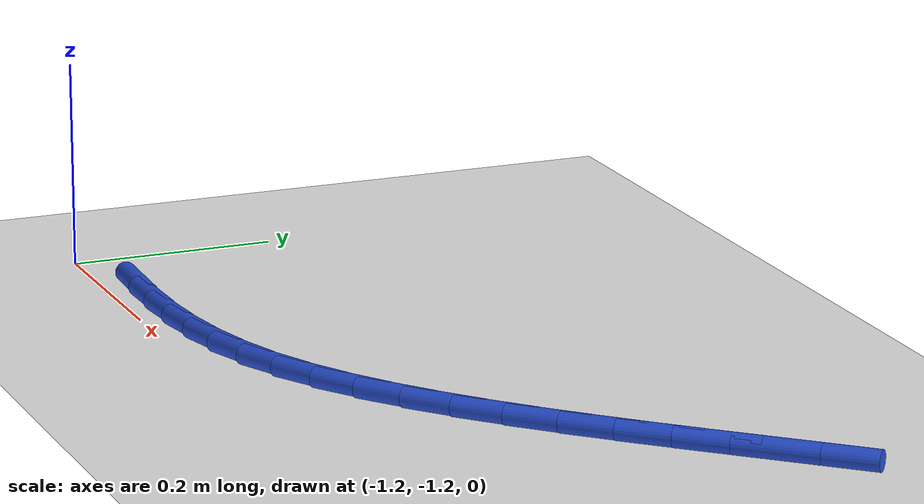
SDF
<sdf version="1.6">
 <world name="default">
  <model name="ground_plane">
   <static>1</static>
   <link name="link">
    <collision name="collision">
     <geometry><plane><normal>0 0 1</normal><size>100 100</size></plane></geometry>
     <surface><friction><ode><mu>100</mu><mu2>50</mu2></ode></friction></surface>
    </collision>
    <visual name="visual">
     <cast_shadows>0</cast_shadows>
     <geometry><plane><normal>0 0 1</normal><size>100 100</size></plane></geometry>
     <material>
      <script><uri>file://media/materials/scripts/gazebo.material</uri><name>Gazebo/WhiteGlow</name></script>
     </material>
    </visual>
   </link>
  </model>
  <model name="line">
   <link name="link_105">
    <pose>-1.084668571052977 -1.1748749175706372 0.01 0 1.57 -0.0349521256517624</pose>
    <collision name="collision">
     <geometry><cylinder><radius>0.01</radius><length>0.08</length></cylinder></geometry>
    </collision>
    <visual name="visual">
     <material>
      <script><name>Gazebo/Blue</name><uri>file://media/materials/scripts/gazebo.material</uri></script>
     </material>
     <geometry><cylinder><radius>0.01</radius><length>0.08</length></cylinder></geometry>
    </visual>
   </link>
   <link name="link_106">
    <pose>-1.0346823260880051 -1.1766227548926085 0.01 0 1.57 0.01556012557608776</pose>
    <collision name="collision">
     <geometry><cylinder><radius>0.01</radius><length>0.08</length></cylinder></geometry>
    </collision>
    <visual name="visual">
     <material>
      <script><name>Gazebo/Blue</name><uri>file://media/materials/scripts/gazebo.material</uri></script>
     </material>
     <geometry><cylinder><radius>0.01</radius><length>0.08</length></cylinder></geometry>
    </visual>
   </link>
   <link name="link_107">
    <pose>-0.9855956939722488 -1.1758588990841634 0.01 0 1.57 0.0765281566003674</pose>
    <collision name="collision">
     <geometry><cylinder><radius>0.01</radius><length>0.08</length></cylinder></geometry>
    </collision>
    <visual name="visual">
     <material>
      <script><name>Gazebo/Blue</name><uri>file://media/materials/scripts/gazebo.material</uri></script>
     </material>
     <geometry><cylinder><radius>0.01</radius><length>0.08</length></cylinder></geometry>
    </visual>
   </link>
   <link name="link_108">
    <pose>-0.9375293660717475 -1.1721732737775654 0.01 0 1.57 0.14844539604661797</pose>
    <collision name="collision">
     <geometry><cylinder><radius>0.01</radius><length>0.08</length></cylinder></geometry>
    </collision>
    <visual name="visual">
     <material>
      <script><name>Gazebo/Blue</name><uri>file://media/materials/scripts/gazebo.material</uri></script>
     </material>
     <geometry><cylinder><radius>0.01</radius><length>0.08</length></cylinder></geometry>
    </visual>
   </link>
   <link name="link_109">
    <pose>-0.8906040337525398 -1.165155802605077 0.01 0 1.57 0.23140203094865425</pose>
    <collision name="collision">
     <geometry><cylinder><radius>0.01</radius><length>0.08</length></cylinder></geometry>
    </collision>
    <visual name="visual">
     <material>
      <script><name>Gazebo/Blue</name><uri>file://media/materials/scripts/gazebo.material</uri></script>
     </material>
     <geometry><cylinder><radius>0.01</radius><length>0.08</length></cylinder></geometry>
    </visual>
   </link>
   <link name="link_110">
    <pose>-0.8449403883806667 -1.1543964091989618 0.01 0 1.57 0.3247685559159043</pose>
    <collision name="collision">
     <geometry><cylinder><radius>0.01</radius><length>0.08</length></cylinder></geometry>
    </collision>
    <visual name="visual">
     <material>
      <script><name>Gazebo/Blue</name><uri>file://media/materials/scripts/gazebo.material</uri></script>
     </material>
     <geometry><cylinder><radius>0.01</radius><length>0.08</length></cylinder></geometry>
    </visual>
   </link>
   <link name="link_111">
    <pose>-0.8006585059166436 -1.1394871397384805 0.01 0 1.57 0.42119614853704074</pose>
    <collision name="collision">
     <geometry><cylinder><radius>0.01</radius><length>0.08</length></cylinder></geometry>
    </collision>
    <visual name="visual">
     <material>
      <script><name>Gazebo/Blue</name><uri>file://media/materials/scripts/gazebo.material</uri></script>
     </material>
     <geometry><cylinder><radius>0.01</radius><length>0.08</length></cylinder></geometry>
    </visual>
   </link>
   <link name="link_112">
    <pose>-0.7578011477240929 -1.120286700124651 0.01 0 1.57 0.5076661056440994</pose>
    <collision name="collision">
     <geometry><cylinder><radius>0.01</radius><length>0.08</length></cylinder></geometry>
    </collision>
    <visual name="visual">
     <material>
      <script><name>Gazebo/Blue</name><uri>file://media/materials/scripts/gazebo.material</uri></script>
     </material>
     <geometry><cylinder><radius>0.01</radius><length>0.08</length></cylinder></geometry>
    </visual>
   </link>
   <link name="link_113">
    <pose>-0.7162593606045513 -1.097177063074045 0.01 0 1.57 0.5823905716351195</pose>
    <collision name="collision">
     <geometry><cylinder><radius>0.01</radius><length>0.08</length></cylinder></geometry>
    </collision>
    <visual name="visual">
     <material>
      <script><name>Gazebo/Blue</name><uri>file://media/materials/scripts/gazebo.material</uri></script>
     </material>
     <geometry><cylinder><radius>0.01</radius><length>0.08</length></cylinder></geometry>
    </visual>
   </link>
   <link name="link_114">
    <pose>-0.6759065408837591 -1.070601078177128 0.01 0 1.57 0.6456419578430522</pose>
    <collision name="collision">
     <geometry><cylinder><radius>0.01</radius><length>0.08</length></cylinder></geometry>
    </collision>
    <visual name="visual">
     <material>
      <script><name>Gazebo/Blue</name><uri>file://media/materials/scripts/gazebo.material</uri></script>
     </material>
     <geometry><cylinder><radius>0.01</radius><length>0.08</length></cylinder></geometry>
    </visual>
   </link>
   <link name="link_115">
    <pose>-0.6366160848874544 -1.0410015950243647 0.01 0 1.57 0.6980815240380353</pose>
    <collision name="collision">
     <geometry><cylinder><radius>0.01</radius><length>0.08</length></cylinder></geometry>
    </collision>
    <visual name="visual">
     <material>
      <script><name>Gazebo/Blue</name><uri>file://media/materials/scripts/gazebo.material</uri></script>
     </material>
     <geometry><cylinder><radius>0.01</radius><length>0.08</length></cylinder></geometry>
    </visual>
   </link>
   <link name="link_116">
    <pose>-0.598261388941376 -1.00882146320622 0.01 0 1.57 0.7405152617929753</pose>
    <collision name="collision">
     <geometry><cylinder><radius>0.01</radius><length>0.08</length></cylinder></geometry>
    </collision>
    <visual name="visual">
     <material>
      <script><name>Gazebo/Blue</name><uri>file://media/materials/scripts/gazebo.material</uri></script>
     </material>
     <geometry><cylinder><radius>0.01</radius><length>0.08</length></cylinder></geometry>
    </visual>
   </link>
   <link name="link_117">
    <pose>-0.5607158493712627 -0.974503532313159 0.01 0 1.57 0.7737335621147309</pose>
    <collision name="collision">
     <geometry><cylinder><radius>0.01</radius><length>0.08</length></cylinder></geometry>
    </collision>
    <visual name="visual">
     <material>
      <script><name>Gazebo/Blue</name><uri>file://media/materials/scripts/gazebo.material</uri></script>
     </material>
     <geometry><cylinder><radius>0.01</radius><length>0.08</length></cylinder></geometry>
    </visual>
   </link>
   <link name="link_118">
    <pose>-0.5238528625028541 -0.9384906519356474 0.01 0 1.57 0.7984179000639704</pose>
    <collision name="collision">
     <geometry><cylinder><radius>0.01</radius><length>0.08</length></cylinder></geometry>
    </collision>
    <visual name="visual">
     <material>
      <script><name>Gazebo/Blue</name><uri>file://media/materials/scripts/gazebo.material</uri></script>
     </material>
     <geometry><cylinder><radius>0.01</radius><length>0.08</length></cylinder></geometry>
    </visual>
   </link>
   <link name="link_119">
    <pose>-0.48754582466188895 -0.9012256716641499 0.01 0 1.57 0.8150916776738718</pose>
    <collision name="collision">
     <geometry><cylinder><radius>0.01</radius><length>0.08</length></cylinder></geometry>
    </collision>
    <visual name="visual">
     <material>
      <script><name>Gazebo/Blue</name><uri>file://media/materials/scripts/gazebo.material</uri></script>
     </material>
     <geometry><cylinder><radius>0.01</radius><length>0.08</length></cylinder></geometry>
    </visual>
   </link>
   <link name="link_120">
    <pose>-0.4516681321741057 -0.8631514410891316 0.01 0 1.57 0.82409609394891</pose>
    <collision name="collision">
     <geometry><cylinder><radius>0.01</radius><length>0.08</length></cylinder></geometry>
    </collision>
    <visual name="visual">
     <material>
      <script><name>Gazebo/Blue</name><uri>file://media/materials/scripts/gazebo.material</uri></script>
     </material>
     <geometry><cylinder><radius>0.01</radius><length>0.08</length></cylinder></geometry>
    </visual>
   </link>
   <link name="link_121">
    <pose>-0.4160931813652436 -0.8247108098010574 0.01 0 1.57 0.8255778450262441</pose>
    <collision name="collision">
     <geometry><cylinder><radius>0.01</radius><length>0.08</length></cylinder></geometry>
    </collision>
    <visual name="visual">
     <material>
      <script><name>Gazebo/Blue</name><uri>file://media/materials/scripts/gazebo.material</uri></script>
     </material>
     <geometry><cylinder><radius>0.01</radius><length>0.08</length></cylinder></geometry>
    </visual>
   </link>
   <link name="link_122">
    <pose>-0.38069436856104083 -0.7863466273903922 0.01 0 1.57 0.8212331918171775</pose>
    <collision name="collision">
     <geometry><cylinder><radius>0.01</radius><length>0.08</length></cylinder></geometry>
    </collision>
    <visual name="visual">
     <material>
      <script><name>Gazebo/Blue</name><uri>file://media/materials/scripts/gazebo.material</uri></script>
     </material>
     <geometry><cylinder><radius>0.01</radius><length>0.08</length></cylinder></geometry>
    </visual>
   </link>
  </model>
 </world>
</sdf>
